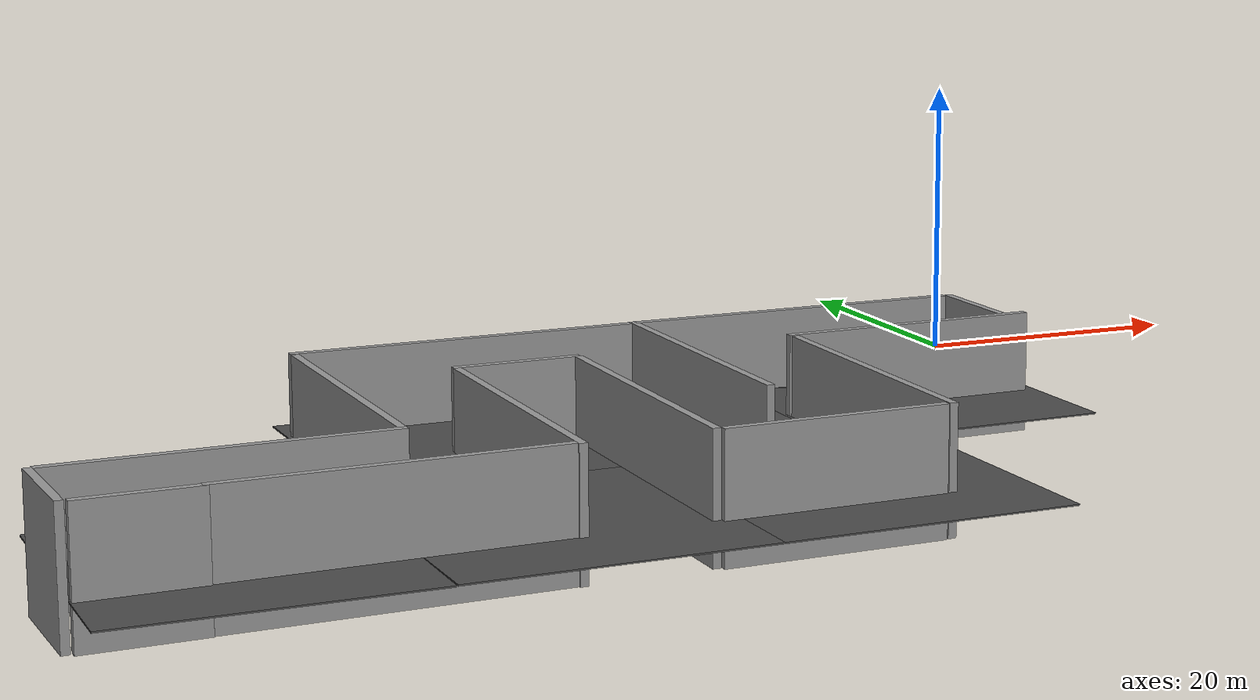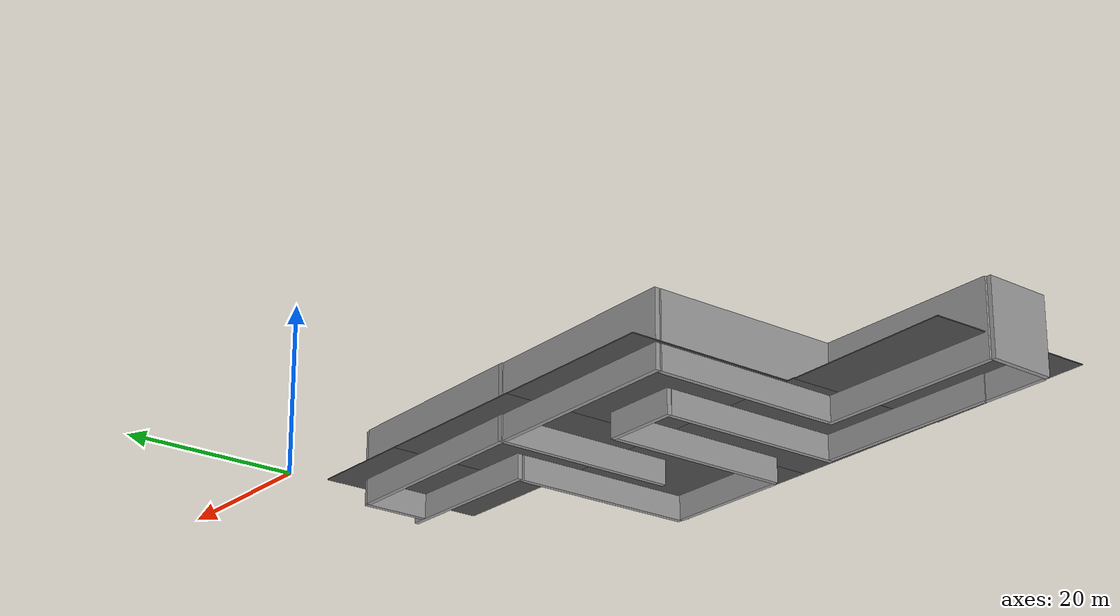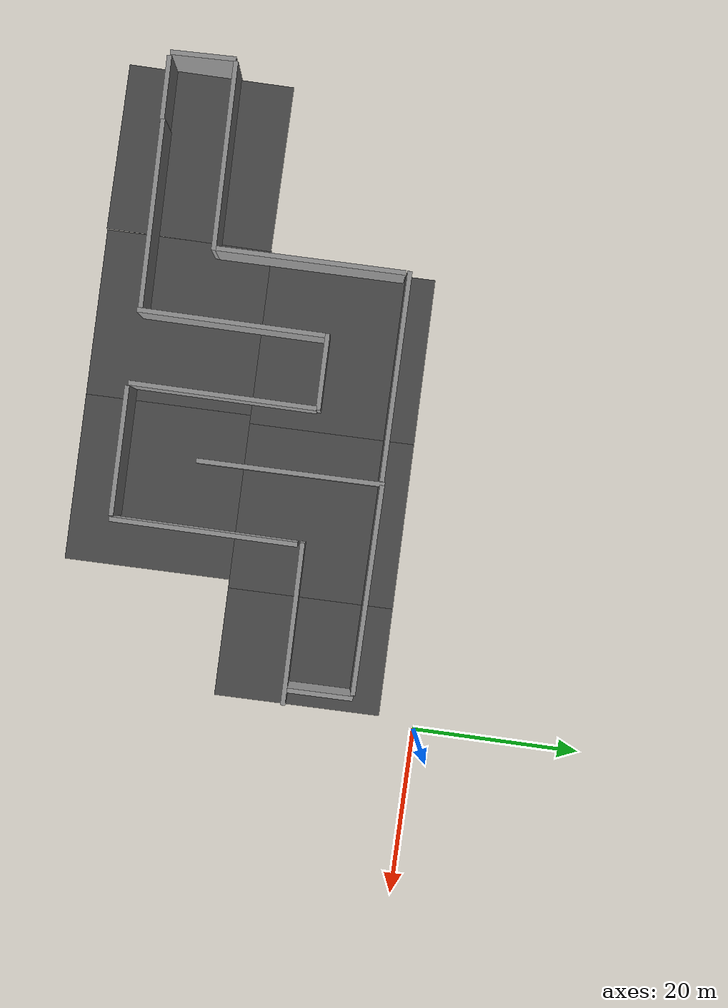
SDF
<?xml version='1.0'?>
<sdf version='1.6'>
  <model name='DQN_world_3'>
    <link name='link'>
      <pose frame=''>-16.1586 -7.95575 1.4 0 -0 0</pose>
      <inertial>
        <inertia>
          <ixx>nan</ixx>
          <ixy>0</ixy>
          <ixz>0</ixz>
          <iyy>nan</iyy>
          <iyz>0</iyz>
          <izz>nan</izz>
        </inertia>
        <mass>0</mass>
        <pose frame=''>0 0 0 0 -0 0</pose>
      </inertial>
      <self_collide>0</self_collide>
      <kinematic>0</kinematic>
      <visual name='visual'>
        <cast_shadows>0</cast_shadows>
        <geometry>
          <box>
            <size>24.6746 0.556506 8.63552</size>
          </box>
        </geometry>
        <material>
          <script>
            <uri>model://grey_wall/materials/scripts</uri>
            <uri>model://grey_wall/materials/textures</uri>
            <name>vrc/grey_wall</name>
          </script>
          <ambient>1 1 1 1</ambient>
          <diffuse>1 1 1 1</diffuse>
          <specular>0 0 0 1</specular>
          <emissive>0 0 0 1</emissive>
        </material>
        <pose frame=''>0 0 0 0 -0 0</pose>
        <transparency>0</transparency>
      </visual>
      <collision name='collision'>
        <laser_retro>0</laser_retro>
        <max_contacts>10</max_contacts>
        <pose frame=''>0 0 0 0 -0 0</pose>
        <geometry>
          <box>
            <size>24.6746 0.556506 8.63552</size>
          </box>
        </geometry>
        <surface>
          <friction>
            <ode>
              <mu>1</mu>
              <mu2>1</mu2>
              <fdir1>0 0 0</fdir1>
              <slip1>0</slip1>
              <slip2>0</slip2>
            </ode>
            <torsional>
              <coefficient>1</coefficient>
              <patch_radius>0</patch_radius>
              <surface_radius>0</surface_radius>
              <use_patch_radius>1</use_patch_radius>
              <ode>
                <slip>0</slip>
              </ode>
            </torsional>
          </friction>
          <bounce>
            <restitution_coefficient>0</restitution_coefficient>
            <threshold>1e+06</threshold>
          </bounce>
          <contact>
            <collide_without_contact>0</collide_without_contact>
            <collide_without_contact_bitmask>1</collide_without_contact_bitmask>
            <collide_bitmask>1</collide_bitmask>
            <ode>
              <soft_cfm>0</soft_cfm>
              <soft_erp>0.2</soft_erp>
              <kp>1e+13</kp>
              <kd>1</kd>
              <max_vel>0.01</max_vel>
              <min_depth>0</min_depth>
            </ode>
            <bullet>
              <split_impulse>1</split_impulse>
              <split_impulse_penetration_threshold>-0.01</split_impulse_penetration_threshold>
              <soft_cfm>0</soft_cfm>
              <soft_erp>0.2</soft_erp>
              <kp>1e+13</kp>
              <kd>1</kd>
            </bullet>
          </contact>
        </surface>
      </collision>
    </link>
    <link name='link_clone'>
      <pose frame=''>-3.3999 -11.7401 1.4 0 -0 1.58149</pose>
      <inertial>
        <inertia>
          <ixx>nan</ixx>
          <ixy>0</ixy>
          <ixz>0</ixz>
          <iyy>nan</iyy>
          <iyz>0</iyz>
          <izz>nan</izz>
        </inertia>
        <mass>0</mass>
        <pose frame=''>0 0 0 0 -0 0</pose>
      </inertial>
      <self_collide>0</self_collide>
      <kinematic>0</kinematic>
      <visual name='visual'>
        <cast_shadows>0</cast_shadows>
        <geometry>
          <box>
            <size>7.71438 0.556506 8.63552</size>
          </box>
        </geometry>
        <material>
          <script>
            <uri>model://grey_wall/materials/scripts</uri>
            <uri>model://grey_wall/materials/textures</uri>
            <name>vrc/grey_wall</name>
          </script>
          <ambient>1 1 1 1</ambient>
          <diffuse>1 1 1 1</diffuse>
          <specular>0 0 0 1</specular>
          <emissive>0 0 0 1</emissive>
          <shader type='pixel'/>
        </material>
        <pose frame=''>0 0 0 0 -0 0</pose>
        <transparency>0</transparency>
      </visual>
      <collision name='collision'>
        <laser_retro>0</laser_retro>
        <max_contacts>10</max_contacts>
        <pose frame=''>0 0 0 0 -0 0</pose>
        <geometry>
          <box>
            <size>7.71438 0.556506 8.63552</size>
          </box>
        </geometry>
        <surface>
          <friction>
            <ode>
              <mu>1</mu>
              <mu2>1</mu2>
              <fdir1>0 0 0</fdir1>
              <slip1>0</slip1>
              <slip2>0</slip2>
            </ode>
            <torsional>
              <coefficient>1</coefficient>
              <patch_radius>0</patch_radius>
              <surface_radius>0</surface_radius>
              <use_patch_radius>1</use_patch_radius>
              <ode>
                <slip>0</slip>
              </ode>
            </torsional>
          </friction>
          <bounce>
            <restitution_coefficient>0</restitution_coefficient>
            <threshold>1e+06</threshold>
          </bounce>
          <contact>
            <collide_without_contact>0</collide_without_contact>
            <collide_without_contact_bitmask>1</collide_without_contact_bitmask>
            <collide_bitmask>1</collide_bitmask>
            <ode>
              <soft_cfm>0</soft_cfm>
              <soft_erp>0.2</soft_erp>
              <kp>1e+13</kp>
              <kd>1</kd>
              <max_vel>0.01</max_vel>
              <min_depth>0</min_depth>
            </ode>
            <bullet>
              <split_impulse>1</split_impulse>
              <split_impulse_penetration_threshold>-0.01</split_impulse_penetration_threshold>
              <soft_cfm>0</soft_cfm>
              <soft_erp>0.2</soft_erp>
              <kp>1e+13</kp>
              <kd>1</kd>
            </bullet>
          </contact>
        </surface>
      </collision>
    </link>
    <link name='link_clone_0'>
      <pose frame=''>-28.4744 -18.7157 1.4 0 -0 1.58149</pose>
      <inertial>
        <inertia>
          <ixx>nan</ixx>
          <ixy>0</ixy>
          <ixz>0</ixz>
          <iyy>nan</iyy>
          <iyz>0</iyz>
          <izz>nan</izz>
        </inertia>
        <mass>0</mass>
        <pose frame=''>0 0 0 0 -0 0</pose>
      </inertial>
      <self_collide>0</self_collide>
      <kinematic>0</kinematic>
      <visual name='visual'>
        <cast_shadows>0</cast_shadows>
        <geometry>
          <box>
            <size>22.0968 0.556506 8.63552</size>
          </box>
        </geometry>
        <material>
          <script>
            <uri>model://grey_wall/materials/scripts</uri>
            <uri>model://grey_wall/materials/textures</uri>
            <name>vrc/grey_wall</name>
          </script>
          <ambient>1 1 1 1</ambient>
          <diffuse>1 1 1 1</diffuse>
          <specular>0 0 0 1</specular>
          <emissive>0 0 0 1</emissive>
          <shader type='pixel'/>
        </material>
        <pose frame=''>0 0 0 0 -0 0</pose>
        <transparency>0</transparency>
      </visual>
      <collision name='collision'>
        <laser_retro>0</laser_retro>
        <max_contacts>10</max_contacts>
        <pose frame=''>0 0 0 0 -0 0</pose>
        <geometry>
          <box>
            <size>22.0968 0.556506 8.63552</size>
          </box>
        </geometry>
        <surface>
          <friction>
            <ode>
              <mu>1</mu>
              <mu2>1</mu2>
              <fdir1>0 0 0</fdir1>
              <slip1>0</slip1>
              <slip2>0</slip2>
            </ode>
            <torsional>
              <coefficient>1</coefficient>
              <patch_radius>0</patch_radius>
              <surface_radius>0</surface_radius>
              <use_patch_radius>1</use_patch_radius>
              <ode>
                <slip>0</slip>
              </ode>
            </torsional>
          </friction>
          <bounce>
            <restitution_coefficient>0</restitution_coefficient>
            <threshold>1e+06</threshold>
          </bounce>
          <contact>
            <collide_without_contact>0</collide_without_contact>
            <collide_without_contact_bitmask>1</collide_without_contact_bitmask>
            <collide_bitmask>1</collide_bitmask>
            <ode>
              <soft_cfm>0</soft_cfm>
              <soft_erp>0.2</soft_erp>
              <kp>1e+13</kp>
              <kd>1</kd>
              <max_vel>0.01</max_vel>
              <min_depth>0</min_depth>
            </ode>
            <bullet>
              <split_impulse>1</split_impulse>
              <split_impulse_penetration_threshold>-0.01</split_impulse_penetration_threshold>
              <soft_cfm>0</soft_cfm>
              <soft_erp>0.2</soft_erp>
              <kp>1e+13</kp>
              <kd>1</kd>
            </bullet>
          </contact>
        </surface>
      </collision>
    </link>
    <link name='link_clone_0_clone'>
      <pose frame=''>-44.7994 -28.0115 1.4 0 -0 1.57361</pose>
      <inertial>
        <inertia>
          <ixx>nan</ixx>
          <ixy>0</ixy>
          <ixz>0</ixz>
          <iyy>nan</iyy>
          <iyz>0</iyz>
          <izz>nan</izz>
        </inertia>
        <mass>0</mass>
        <pose frame=''>0 0 0 0 -0 0</pose>
      </inertial>
      <self_collide>0</self_collide>
      <kinematic>0</kinematic>
      <visual name='visual'>
        <cast_shadows>0</cast_shadows>
        <geometry>
          <box>
            <size>22.0968 0.556506 8.63552</size>
          </box>
        </geometry>
        <material>
          <script>
            <uri>model://grey_wall/materials/scripts</uri>
            <uri>model://grey_wall/materials/textures</uri>
            <name>vrc/grey_wall</name>
          </script>
          <ambient>1 1 1 1</ambient>
          <diffuse>1 1 1 1</diffuse>
          <specular>0 0 0 1</specular>
          <emissive>0 0 0 1</emissive>
          <shader type='pixel'/>
        </material>
        <pose frame=''>0 0 0 0 -0 0</pose>
        <transparency>0</transparency>
      </visual>
      <collision name='collision'>
        <laser_retro>0</laser_retro>
        <max_contacts>10</max_contacts>
        <pose frame=''>0 0 0 0 -0 0</pose>
        <geometry>
          <box>
            <size>22.0968 0.556506 8.63552</size>
          </box>
        </geometry>
        <surface>
          <friction>
            <ode>
              <mu>1</mu>
              <mu2>1</mu2>
              <fdir1>0 0 0</fdir1>
              <slip1>0</slip1>
              <slip2>0</slip2>
            </ode>
            <torsional>
              <coefficient>1</coefficient>
              <patch_radius>0</patch_radius>
              <surface_radius>0</surface_radius>
              <use_patch_radius>1</use_patch_radius>
              <ode>
                <slip>0</slip>
              </ode>
            </torsional>
          </friction>
          <bounce>
            <restitution_coefficient>0</restitution_coefficient>
            <threshold>1e+06</threshold>
          </bounce>
          <contact>
            <collide_without_contact>0</collide_without_contact>
            <collide_without_contact_bitmask>1</collide_without_contact_bitmask>
            <collide_bitmask>1</collide_bitmask>
            <ode>
              <soft_cfm>0</soft_cfm>
              <soft_erp>0.2</soft_erp>
              <kp>1e+13</kp>
              <kd>1</kd>
              <max_vel>0.01</max_vel>
              <min_depth>0</min_depth>
            </ode>
            <bullet>
              <split_impulse>1</split_impulse>
              <split_impulse_penetration_threshold>-0.01</split_impulse_penetration_threshold>
              <soft_cfm>0</soft_cfm>
              <soft_erp>0.2</soft_erp>
              <kp>1e+13</kp>
              <kd>1</kd>
            </bullet>
          </contact>
        </surface>
      </collision>
    </link>
    <link name='link_clone_0_clone_0'>
      <pose frame=''>-56.0937 -38.8963 1.4 0 0 -3.1202</pose>
      <inertial>
        <inertia>
          <ixx>nan</ixx>
          <ixy>0</ixy>
          <ixz>0</ixz>
          <iyy>nan</iyy>
          <iyz>0</iyz>
          <izz>nan</izz>
        </inertia>
        <mass>0</mass>
        <pose frame=''>0 0 0 0 -0 0</pose>
      </inertial>
      <self_collide>0</self_collide>
      <kinematic>0</kinematic>
      <visual name='visual'>
        <cast_shadows>0</cast_shadows>
        <geometry>
          <box>
            <size>22.0968 0.556506 8.63552</size>
          </box>
        </geometry>
        <material>
          <script>
            <uri>model://grey_wall/materials/scripts</uri>
            <uri>model://grey_wall/materials/textures</uri>
            <name>vrc/grey_wall</name>
          </script>
          <ambient>1 1 1 1</ambient>
          <diffuse>1 1 1 1</diffuse>
          <specular>0 0 0 1</specular>
          <emissive>0 0 0 1</emissive>
          <shader type='pixel'/>
        </material>
        <pose frame=''>0 0 0 0 -0 0</pose>
        <transparency>0</transparency>
      </visual>
      <collision name='collision'>
        <laser_retro>0</laser_retro>
        <max_contacts>10</max_contacts>
        <pose frame=''>0 0 0 0 -0 0</pose>
        <geometry>
          <box>
            <size>22.0968 0.556506 8.63552</size>
          </box>
        </geometry>
        <surface>
          <friction>
            <ode>
              <mu>1</mu>
              <mu2>1</mu2>
              <fdir1>0 0 0</fdir1>
              <slip1>0</slip1>
              <slip2>0</slip2>
            </ode>
            <torsional>
              <coefficient>1</coefficient>
              <patch_radius>0</patch_radius>
              <surface_radius>0</surface_radius>
              <use_patch_radius>1</use_patch_radius>
              <ode>
                <slip>0</slip>
              </ode>
            </torsional>
          </friction>
          <bounce>
            <restitution_coefficient>0</restitution_coefficient>
            <threshold>1e+06</threshold>
          </bounce>
          <contact>
            <collide_without_contact>0</collide_without_contact>
            <collide_without_contact_bitmask>1</collide_without_contact_bitmask>
            <collide_bitmask>1</collide_bitmask>
            <ode>
              <soft_cfm>0</soft_cfm>
              <soft_erp>0.2</soft_erp>
              <kp>1e+13</kp>
              <kd>1</kd>
              <max_vel>0.01</max_vel>
              <min_depth>0</min_depth>
            </ode>
            <bullet>
              <split_impulse>1</split_impulse>
              <split_impulse_penetration_threshold>-0.01</split_impulse_penetration_threshold>
              <soft_cfm>0</soft_cfm>
              <soft_erp>0.2</soft_erp>
              <kp>1e+13</kp>
              <kd>1</kd>
            </bullet>
          </contact>
        </surface>
      </collision>
    </link>
    <link name='link_clone_0_clone_1'>
      <pose frame=''>-63.9022 -31.4223 1.4 0 0 -3.1202</pose>
      <inertial>
        <inertia>
          <ixx>nan</ixx>
          <ixy>0</ixy>
          <ixz>0</ixz>
          <iyy>nan</iyy>
          <iyz>0</iyz>
          <izz>nan</izz>
        </inertia>
        <mass>0</mass>
        <pose frame=''>0 0 0 0 -0 0</pose>
      </inertial>
      <self_collide>0</self_collide>
      <kinematic>0</kinematic>
      <visual name='visual'>
        <cast_shadows>0</cast_shadows>
        <geometry>
          <box>
            <size>22.0968 0.556506 8.63552</size>
          </box>
        </geometry>
        <material>
          <script>
            <uri>model://grey_wall/materials/scripts</uri>
            <uri>model://grey_wall/materials/textures</uri>
            <name>vrc/grey_wall</name>
          </script>
          <ambient>1 1 1 1</ambient>
          <diffuse>1 1 1 1</diffuse>
          <specular>0 0 0 1</specular>
          <emissive>0 0 0 1</emissive>
          <shader type='pixel'/>
        </material>
        <pose frame=''>0 0 0 0 -0 0</pose>
        <transparency>0</transparency>
      </visual>
      <collision name='collision'>
        <laser_retro>0</laser_retro>
        <max_contacts>10</max_contacts>
        <pose frame=''>0 0 0 0 -0 0</pose>
        <geometry>
          <box>
            <size>22.0968 0.556506 8.63552</size>
          </box>
        </geometry>
        <surface>
          <friction>
            <ode>
              <mu>1</mu>
              <mu2>1</mu2>
              <fdir1>0 0 0</fdir1>
              <slip1>0</slip1>
              <slip2>0</slip2>
            </ode>
            <torsional>
              <coefficient>1</coefficient>
              <patch_radius>0</patch_radius>
              <surface_radius>0</surface_radius>
              <use_patch_radius>1</use_patch_radius>
              <ode>
                <slip>0</slip>
              </ode>
            </torsional>
          </friction>
          <bounce>
            <restitution_coefficient>0</restitution_coefficient>
            <threshold>1e+06</threshold>
          </bounce>
          <contact>
            <collide_without_contact>0</collide_without_contact>
            <collide_without_contact_bitmask>1</collide_without_contact_bitmask>
            <collide_bitmask>1</collide_bitmask>
            <ode>
              <soft_cfm>0</soft_cfm>
              <soft_erp>0.2</soft_erp>
              <kp>1e+13</kp>
              <kd>1</kd>
              <max_vel>0.01</max_vel>
              <min_depth>0</min_depth>
            </ode>
            <bullet>
              <split_impulse>1</split_impulse>
              <split_impulse_penetration_threshold>-0.01</split_impulse_penetration_threshold>
              <soft_cfm>0</soft_cfm>
              <soft_erp>0.2</soft_erp>
              <kp>1e+13</kp>
              <kd>1</kd>
            </bullet>
          </contact>
        </surface>
      </collision>
    </link>
    <link name='link_clone_0_clone_clone'>
      <pose frame=''>-36.2495 -27.8062 1.4 0 -0 1.57361</pose>
      <inertial>
        <inertia>
          <ixx>nan</ixx>
          <ixy>0</ixy>
          <ixz>0</ixz>
          <iyy>nan</iyy>
          <iyz>0</iyz>
          <izz>nan</izz>
        </inertia>
        <mass>0</mass>
        <pose frame=''>0 0 0 0 -0 0</pose>
      </inertial>
      <self_collide>0</self_collide>
      <kinematic>0</kinematic>
      <visual name='visual'>
        <cast_shadows>0</cast_shadows>
        <geometry>
          <box>
            <size>22.0968 0.556506 8.63552</size>
          </box>
        </geometry>
        <material>
          <script>
            <uri>model://grey_wall/materials/scripts</uri>
            <uri>model://grey_wall/materials/textures</uri>
            <name>vrc/grey_wall</name>
          </script>
          <ambient>1 1 1 1</ambient>
          <diffuse>1 1 1 1</diffuse>
          <specular>0 0 0 1</specular>
          <emissive>0 0 0 1</emissive>
          <shader type='pixel'/>
        </material>
        <pose frame=''>0 0 0 0 -0 0</pose>
        <transparency>0</transparency>
      </visual>
      <collision name='collision'>
        <laser_retro>0</laser_retro>
        <max_contacts>10</max_contacts>
        <pose frame=''>0 0 0 0 -0 0</pose>
        <geometry>
          <box>
            <size>22.0968 0.556506 8.63552</size>
          </box>
        </geometry>
        <surface>
          <friction>
            <ode>
              <mu>1</mu>
              <mu2>1</mu2>
              <fdir1>0 0 0</fdir1>
              <slip1>0</slip1>
              <slip2>0</slip2>
            </ode>
            <torsional>
              <coefficient>1</coefficient>
              <patch_radius>0</patch_radius>
              <surface_radius>0</surface_radius>
              <use_patch_radius>1</use_patch_radius>
              <ode>
                <slip>0</slip>
              </ode>
            </torsional>
          </friction>
          <bounce>
            <restitution_coefficient>0</restitution_coefficient>
            <threshold>1e+06</threshold>
          </bounce>
          <contact>
            <collide_without_contact>0</collide_without_contact>
            <collide_without_contact_bitmask>1</collide_without_contact_bitmask>
            <collide_bitmask>1</collide_bitmask>
            <ode>
              <soft_cfm>0</soft_cfm>
              <soft_erp>0.2</soft_erp>
              <kp>1e+13</kp>
              <kd>1</kd>
              <max_vel>0.01</max_vel>
              <min_depth>0</min_depth>
            </ode>
            <bullet>
              <split_impulse>1</split_impulse>
              <split_impulse_penetration_threshold>-0.01</split_impulse_penetration_threshold>
              <soft_cfm>0</soft_cfm>
              <soft_erp>0.2</soft_erp>
              <kp>1e+13</kp>
              <kd>1</kd>
            </bullet>
          </contact>
        </surface>
      </collision>
    </link>
    <link name='link_clone_0_clone_clone_0'>
      <pose frame=''>-20.2495 -27.8062 1.4 0 -0 1.57361</pose>
      <inertial>
        <inertia>
          <ixx>nan</ixx>
          <ixy>0</ixy>
          <ixz>0</ixz>
          <iyy>nan</iyy>
          <iyz>0</iyz>
          <izz>nan</izz>
        </inertia>
        <mass>0</mass>
        <pose frame=''>0 0 0 0 -0 0</pose>
      </inertial>
      <self_collide>0</self_collide>
      <kinematic>0</kinematic>
      <visual name='visual'>
        <cast_shadows>0</cast_shadows>
        <geometry>
          <box>
            <size>22.0968 0.556506 8.63552</size>
          </box>
        </geometry>
        <material>
          <script>
            <uri>model://grey_wall/materials/scripts</uri>
            <uri>model://grey_wall/materials/textures</uri>
            <name>vrc/grey_wall</name>
          </script>
          <ambient>1 1 1 1</ambient>
          <diffuse>1 1 1 1</diffuse>
          <specular>0 0 0 1</specular>
          <emissive>0 0 0 1</emissive>
          <shader type='pixel'/>
        </material>
        <pose frame=''>0 0 0 0 -0 0</pose>
        <transparency>0</transparency>
      </visual>
      <collision name='collision'>
        <laser_retro>0</laser_retro>
        <max_contacts>10</max_contacts>
        <pose frame=''>0 0 0 0 -0 0</pose>
        <geometry>
          <box>
            <size>22.0968 0.556506 8.63552</size>
          </box>
        </geometry>
        <surface>
          <friction>
            <ode>
              <mu>1</mu>
              <mu2>1</mu2>
              <fdir1>0 0 0</fdir1>
              <slip1>0</slip1>
              <slip2>0</slip2>
            </ode>
            <torsional>
              <coefficient>1</coefficient>
              <patch_radius>0</patch_radius>
              <surface_radius>0</surface_radius>
              <use_patch_radius>1</use_patch_radius>
              <ode>
                <slip>0</slip>
              </ode>
            </torsional>
          </friction>
          <bounce>
            <restitution_coefficient>0</restitution_coefficient>
            <threshold>1e+06</threshold>
          </bounce>
          <contact>
            <collide_without_contact>0</collide_without_contact>
            <collide_without_contact_bitmask>1</collide_without_contact_bitmask>
            <collide_bitmask>1</collide_bitmask>
            <ode>
              <soft_cfm>0</soft_cfm>
              <soft_erp>0.2</soft_erp>
              <kp>1e+13</kp>
              <kd>1</kd>
              <max_vel>0.01</max_vel>
              <min_depth>0</min_depth>
            </ode>
            <bullet>
              <split_impulse>1</split_impulse>
              <split_impulse_penetration_threshold>-0.01</split_impulse_penetration_threshold>
              <soft_cfm>0</soft_cfm>
              <soft_erp>0.2</soft_erp>
              <kp>1e+13</kp>
              <kd>1</kd>
            </bullet>
          </contact>
        </surface>
      </collision>
    </link>
    <link name='link_clone_2_clone_0'>
      <pose frame=''>-53.2184 -19.83 1.4 0 -0 1.58085</pose>
      <inertial>
        <inertia>
          <ixx>nan</ixx>
          <ixy>0</ixy>
          <ixz>0</ixz>
          <iyy>nan</iyy>
          <iyz>0</iyz>
          <izz>nan</izz>
        </inertia>
        <mass>0</mass>
        <pose frame=''>0 0 0 0 -0 0</pose>
      </inertial>
      <self_collide>0</self_collide>
      <kinematic>0</kinematic>
      <visual name='visual'>
        <cast_shadows>0</cast_shadows>
        <geometry>
          <box>
            <size>22.2987 0.556506 8.63552</size>
          </box>
        </geometry>
        <material>
          <script>
            <uri>model://grey_wall/materials/scripts</uri>
            <uri>model://grey_wall/materials/textures</uri>
            <name>vrc/grey_wall</name>
          </script>
          <ambient>1 1 1 1</ambient>
          <diffuse>1 1 1 1</diffuse>
          <specular>0 0 0 1</specular>
          <emissive>0 0 0 1</emissive>
          <shader type='pixel'/>
        </material>
        <pose frame=''>0 0 0 0 -0 0</pose>
        <transparency>0</transparency>
      </visual>
      <collision name='collision'>
        <laser_retro>0</laser_retro>
        <max_contacts>10</max_contacts>
        <pose frame=''>0 0 0 0 -0 0</pose>
        <geometry>
          <box>
            <size>22.2987 0.556506 8.63552</size>
          </box>
        </geometry>
        <surface>
          <friction>
            <ode>
              <mu>1</mu>
              <mu2>1</mu2>
              <fdir1>0 0 0</fdir1>
              <slip1>0</slip1>
              <slip2>0</slip2>
            </ode>
            <torsional>
              <coefficient>1</coefficient>
              <patch_radius>0</patch_radius>
              <surface_radius>0</surface_radius>
              <use_patch_radius>1</use_patch_radius>
              <ode>
                <slip>0</slip>
              </ode>
            </torsional>
          </friction>
          <bounce>
            <restitution_coefficient>0</restitution_coefficient>
            <threshold>1e+06</threshold>
          </bounce>
          <contact>
            <collide_without_contact>0</collide_without_contact>
            <collide_without_contact_bitmask>1</collide_without_contact_bitmask>
            <collide_bitmask>1</collide_bitmask>
            <ode>
              <soft_cfm>0</soft_cfm>
              <soft_erp>0.2</soft_erp>
              <kp>1e+13</kp>
              <kd>1</kd>
              <max_vel>0.01</max_vel>
              <min_depth>0</min_depth>
            </ode>
            <bullet>
              <split_impulse>1</split_impulse>
              <split_impulse_penetration_threshold>-0.01</split_impulse_penetration_threshold>
              <soft_cfm>0</soft_cfm>
              <soft_erp>0.2</soft_erp>
              <kp>1e+13</kp>
              <kd>1</kd>
            </bullet>
          </contact>
        </surface>
      </collision>
    </link>
    <link name='link_clone_2_clone_0_clone'>
      <pose frame=''>-40.6053 -16.6295 1.4 0 -0 0.014459</pose>
      <inertial>
        <inertia>
          <ixx>nan</ixx>
          <ixy>0</ixy>
          <ixz>0</ixz>
          <iyy>nan</iyy>
          <iyz>0</iyz>
          <izz>nan</izz>
        </inertia>
        <mass>0</mass>
        <pose frame=''>0 0 0 0 -0 0</pose>
      </inertial>
      <self_collide>0</self_collide>
      <kinematic>0</kinematic>
      <visual name='visual'>
        <cast_shadows>0</cast_shadows>
        <geometry>
          <box>
            <size>8.91114 0.556506 8.63552</size>
          </box>
        </geometry>
        <material>
          <script>
            <uri>model://grey_wall/materials/scripts</uri>
            <uri>model://grey_wall/materials/textures</uri>
            <name>vrc/grey_wall</name>
          </script>
          <ambient>1 1 1 1</ambient>
          <diffuse>1 1 1 1</diffuse>
          <specular>0 0 0 1</specular>
          <emissive>0 0 0 1</emissive>
          <shader type='pixel'/>
        </material>
        <pose frame=''>0 0 0 0 -0 0</pose>
        <transparency>0</transparency>
      </visual>
      <collision name='collision'>
        <laser_retro>0</laser_retro>
        <max_contacts>10</max_contacts>
        <pose frame=''>0 0 0 0 -0 0</pose>
        <geometry>
          <box>
            <size>8.91114 0.556506 8.63552</size>
          </box>
        </geometry>
        <surface>
          <friction>
            <ode>
              <mu>1</mu>
              <mu2>1</mu2>
              <fdir1>0 0 0</fdir1>
              <slip1>0</slip1>
              <slip2>0</slip2>
            </ode>
            <torsional>
              <coefficient>1</coefficient>
              <patch_radius>0</patch_radius>
              <surface_radius>0</surface_radius>
              <use_patch_radius>1</use_patch_radius>
              <ode>
                <slip>0</slip>
              </ode>
            </torsional>
          </friction>
          <bounce>
            <restitution_coefficient>0</restitution_coefficient>
            <threshold>1e+06</threshold>
          </bounce>
          <contact>
            <collide_without_contact>0</collide_without_contact>
            <collide_without_contact_bitmask>1</collide_without_contact_bitmask>
            <collide_bitmask>1</collide_bitmask>
            <ode>
              <soft_cfm>0</soft_cfm>
              <soft_erp>0.2</soft_erp>
              <kp>1e+13</kp>
              <kd>1</kd>
              <max_vel>0.01</max_vel>
              <min_depth>0</min_depth>
            </ode>
            <bullet>
              <split_impulse>1</split_impulse>
              <split_impulse_penetration_threshold>-0.01</split_impulse_penetration_threshold>
              <soft_cfm>0</soft_cfm>
              <soft_erp>0.2</soft_erp>
              <kp>1e+13</kp>
              <kd>1</kd>
            </bullet>
          </contact>
        </surface>
      </collision>
    </link>
    <link name='link_clone_2_clone_1'>
      <pose frame=''>-11.0728 -16.0271 1.4 0 0 -3.12375</pose>
      <inertial>
        <inertia>
          <ixx>nan</ixx>
          <ixy>0</ixy>
          <ixz>0</ixz>
          <iyy>nan</iyy>
          <iyz>0</iyz>
          <izz>nan</izz>
        </inertia>
        <mass>0</mass>
        <pose frame=''>0 0 0 0 -0 0</pose>
      </inertial>
      <self_collide>0</self_collide>
      <kinematic>0</kinematic>
      <visual name='visual'>
        <cast_shadows>0</cast_shadows>
        <geometry>
          <box>
            <size>19.0054 0.556506 8.63552</size>
          </box>
        </geometry>
        <material>
          <script>
            <uri>model://grey_wall/materials/scripts</uri>
            <uri>model://grey_wall/materials/textures</uri>
            <name>vrc/grey_wall</name>
          </script>
          <ambient>1 1 1 1</ambient>
          <diffuse>1 1 1 1</diffuse>
          <specular>0 0 0 1</specular>
          <emissive>0 0 0 1</emissive>
          <shader type='pixel'/>
        </material>
        <pose frame=''>0 0 0 0 -0 0</pose>
        <transparency>0</transparency>
      </visual>
      <collision name='collision'>
        <laser_retro>0</laser_retro>
        <max_contacts>10</max_contacts>
        <pose frame=''>0 0 0 0 -0 0</pose>
        <geometry>
          <box>
            <size>19.0054 0.556506 8.63552</size>
          </box>
        </geometry>
        <surface>
          <friction>
            <ode>
              <mu>1</mu>
              <mu2>1</mu2>
              <fdir1>0 0 0</fdir1>
              <slip1>0</slip1>
              <slip2>0</slip2>
            </ode>
            <torsional>
              <coefficient>1</coefficient>
              <patch_radius>0</patch_radius>
              <surface_radius>0</surface_radius>
              <use_patch_radius>1</use_patch_radius>
              <ode>
                <slip>0</slip>
              </ode>
            </torsional>
          </friction>
          <bounce>
            <restitution_coefficient>0</restitution_coefficient>
            <threshold>1e+06</threshold>
          </bounce>
          <contact>
            <collide_without_contact>0</collide_without_contact>
            <collide_without_contact_bitmask>1</collide_without_contact_bitmask>
            <collide_bitmask>1</collide_bitmask>
            <ode>
              <soft_cfm>0</soft_cfm>
              <soft_erp>0.2</soft_erp>
              <kp>1e+13</kp>
              <kd>1</kd>
              <max_vel>0.01</max_vel>
              <min_depth>0</min_depth>
            </ode>
            <bullet>
              <split_impulse>1</split_impulse>
              <split_impulse_penetration_threshold>-0.01</split_impulse_penetration_threshold>
              <soft_cfm>0</soft_cfm>
              <soft_erp>0.2</soft_erp>
              <kp>1e+13</kp>
              <kd>1</kd>
            </bullet>
          </contact>
        </surface>
      </collision>
    </link>
    <link name='link_clone_3_clone'>
      <pose frame=''>-28.2495 -38.8062 1.4 0 -0 0.01443</pose>
      <inertial>
        <inertia>
          <ixx>nan</ixx>
          <ixy>0</ixy>
          <ixz>0</ixz>
          <iyy>nan</iyy>
          <iyz>0</iyz>
          <izz>nan</izz>
        </inertia>
        <mass>0</mass>
        <pose frame=''>0 0 0 0 -0 0</pose>
      </inertial>
      <self_collide>0</self_collide>
      <kinematic>0</kinematic>
      <visual name='visual'>
        <cast_shadows>0</cast_shadows>
        <geometry>
          <box>
            <size>15.2375 0.556506 8.63552</size>
          </box>
        </geometry>
        <material>
          <script>
            <uri>model://grey_wall/materials/scripts</uri>
            <uri>model://grey_wall/materials/textures</uri>
            <name>vrc/grey_wall</name>
          </script>
          <ambient>1 1 1 1</ambient>
          <diffuse>1 1 1 1</diffuse>
          <specular>0 0 0 1</specular>
          <emissive>0 0 0 1</emissive>
          <shader type='pixel'/>
        </material>
        <pose frame=''>0 0 0 0 -0 0</pose>
        <transparency>0</transparency>
      </visual>
      <collision name='collision'>
        <laser_retro>0</laser_retro>
        <max_contacts>10</max_contacts>
        <pose frame=''>0 0 0 0 -0 0</pose>
        <geometry>
          <box>
            <size>15.2375 0.556506 8.63552</size>
          </box>
        </geometry>
        <surface>
          <friction>
            <ode>
              <mu>1</mu>
              <mu2>1</mu2>
              <fdir1>0 0 0</fdir1>
              <slip1>0</slip1>
              <slip2>0</slip2>
            </ode>
            <torsional>
              <coefficient>1</coefficient>
              <patch_radius>0</patch_radius>
              <surface_radius>0</surface_radius>
              <use_patch_radius>1</use_patch_radius>
              <ode>
                <slip>0</slip>
              </ode>
            </torsional>
          </friction>
          <bounce>
            <restitution_coefficient>0</restitution_coefficient>
            <threshold>1e+06</threshold>
          </bounce>
          <contact>
            <collide_without_contact>0</collide_without_contact>
            <collide_without_contact_bitmask>1</collide_without_contact_bitmask>
            <collide_bitmask>1</collide_bitmask>
            <ode>
              <soft_cfm>0</soft_cfm>
              <soft_erp>0.2</soft_erp>
              <kp>1e+13</kp>
              <kd>1</kd>
              <max_vel>0.01</max_vel>
              <min_depth>0</min_depth>
            </ode>
            <bullet>
              <split_impulse>1</split_impulse>
              <split_impulse_penetration_threshold>-0.01</split_impulse_penetration_threshold>
              <soft_cfm>0</soft_cfm>
              <soft_erp>0.2</soft_erp>
              <kp>1e+13</kp>
              <kd>1</kd>
            </bullet>
          </contact>
        </surface>
      </collision>
    </link>
    <link name='link_clone_4'>
      <pose frame=''>-41.255 -8.14242 1.4 0 -0 0.006571</pose>
      <inertial>
        <inertia>
          <ixx>nan</ixx>
          <ixy>0</ixy>
          <ixz>0</ixz>
          <iyy>nan</iyy>
          <iyz>0</iyz>
          <izz>nan</izz>
        </inertia>
        <mass>0</mass>
        <pose frame=''>0 0 0 0 -0 0</pose>
      </inertial>
      <self_collide>0</self_collide>
      <kinematic>0</kinematic>
      <visual name='visual'>
        <cast_shadows>0</cast_shadows>
        <geometry>
          <box>
            <size>24.6746 0.556506 8.63552</size>
          </box>
        </geometry>
        <material>
          <script>
            <uri>model://grey_wall/materials/scripts</uri>
            <uri>model://grey_wall/materials/textures</uri>
            <name>vrc/grey_wall</name>
          </script>
          <ambient>1 1 1 1</ambient>
          <diffuse>1 1 1 1</diffuse>
          <specular>0 0 0 1</specular>
          <emissive>0 0 0 1</emissive>
          <shader type='pixel'/>
        </material>
        <pose frame=''>0 0 0 0 -0 0</pose>
        <transparency>0</transparency>
      </visual>
      <collision name='collision'>
        <laser_retro>0</laser_retro>
        <max_contacts>10</max_contacts>
        <pose frame=''>0 0 0 0 -0 0</pose>
        <geometry>
          <box>
            <size>24.6746 0.556506 8.63552</size>
          </box>
        </geometry>
        <surface>
          <friction>
            <ode>
              <mu>1</mu>
              <mu2>1</mu2>
              <fdir1>0 0 0</fdir1>
              <slip1>0</slip1>
              <slip2>0</slip2>
            </ode>
            <torsional>
              <coefficient>1</coefficient>
              <patch_radius>0</patch_radius>
              <surface_radius>0</surface_radius>
              <use_patch_radius>1</use_patch_radius>
              <ode>
                <slip>0</slip>
              </ode>
            </torsional>
          </friction>
          <bounce>
            <restitution_coefficient>0</restitution_coefficient>
            <threshold>1e+06</threshold>
          </bounce>
          <contact>
            <collide_without_contact>0</collide_without_contact>
            <collide_without_contact_bitmask>1</collide_without_contact_bitmask>
            <collide_bitmask>1</collide_bitmask>
            <ode>
              <soft_cfm>0</soft_cfm>
              <soft_erp>0.2</soft_erp>
              <kp>1e+13</kp>
              <kd>1</kd>
              <max_vel>0.01</max_vel>
              <min_depth>0</min_depth>
            </ode>
            <bullet>
              <split_impulse>1</split_impulse>
              <split_impulse_penetration_threshold>-0.01</split_impulse_penetration_threshold>
              <soft_cfm>0</soft_cfm>
              <soft_erp>0.2</soft_erp>
              <kp>1e+13</kp>
              <kd>1</kd>
            </bullet>
          </contact>
        </surface>
      </collision>
    </link>
    <link name='link_clone_clone'>
      <pose frame=''>-70.6831 -39.3146 1.4 0 0 -3.1202</pose>
      <inertial>
        <inertia>
          <ixx>nan</ixx>
          <ixy>0</ixy>
          <ixz>0</ixz>
          <iyy>nan</iyy>
          <iyz>0</iyz>
          <izz>nan</izz>
        </inertia>
        <mass>0</mass>
        <pose frame=''>0 0 0 0 -0 0</pose>
      </inertial>
      <self_collide>0</self_collide>
      <kinematic>0</kinematic>
      <visual name='visual'>
        <cast_shadows>0</cast_shadows>
        <geometry>
          <box>
            <size>7.71438 0.556506 8.63552</size>
          </box>
        </geometry>
        <material>
          <script>
            <uri>model://grey_wall/materials/scripts</uri>
            <uri>model://grey_wall/materials/textures</uri>
            <name>vrc/grey_wall</name>
          </script>
          <ambient>1 1 1 1</ambient>
          <diffuse>1 1 1 1</diffuse>
          <specular>0 0 0 1</specular>
          <emissive>0 0 0 1</emissive>
          <shader type='pixel'/>
        </material>
        <pose frame=''>0 0 0 0 -0 0</pose>
        <transparency>0</transparency>
      </visual>
      <collision name='collision'>
        <laser_retro>0</laser_retro>
        <max_contacts>10</max_contacts>
        <pose frame=''>0 0 0 0 -0 0</pose>
        <geometry>
          <box>
            <size>7.71438 0.556506 8.63552</size>
          </box>
        </geometry>
        <surface>
          <friction>
            <ode>
              <mu>1</mu>
              <mu2>1</mu2>
              <fdir1>0 0 0</fdir1>
              <slip1>0</slip1>
              <slip2>0</slip2>
            </ode>
            <torsional>
              <coefficient>1</coefficient>
              <patch_radius>0</patch_radius>
              <surface_radius>0</surface_radius>
              <use_patch_radius>1</use_patch_radius>
              <ode>
                <slip>0</slip>
              </ode>
            </torsional>
          </friction>
          <bounce>
            <restitution_coefficient>0</restitution_coefficient>
            <threshold>1e+06</threshold>
          </bounce>
          <contact>
            <collide_without_contact>0</collide_without_contact>
            <collide_without_contact_bitmask>1</collide_without_contact_bitmask>
            <collide_bitmask>1</collide_bitmask>
            <ode>
              <soft_cfm>0</soft_cfm>
              <soft_erp>0.2</soft_erp>
              <kp>1e+13</kp>
              <kd>1</kd>
              <max_vel>0.01</max_vel>
              <min_depth>0</min_depth>
            </ode>
            <bullet>
              <split_impulse>1</split_impulse>
              <split_impulse_penetration_threshold>-0.01</split_impulse_penetration_threshold>
              <soft_cfm>0</soft_cfm>
              <soft_erp>0.2</soft_erp>
              <kp>1e+13</kp>
              <kd>1</kd>
            </bullet>
          </contact>
        </surface>
      </collision>
    </link>
    <link name='link_clone_clone_clone'>
      <pose frame=''>-75.0628 -35.5048 1.4 0 0 -1.53871</pose>
      <inertial>
        <inertia>
          <ixx>nan</ixx>
          <ixy>0</ixy>
          <ixz>0</ixz>
          <iyy>nan</iyy>
          <iyz>0</iyz>
          <izz>nan</izz>
        </inertia>
        <mass>0</mass>
        <pose frame=''>0 0 0 0 -0 0</pose>
      </inertial>
      <self_collide>0</self_collide>
      <kinematic>0</kinematic>
      <visual name='visual'>
        <cast_shadows>0</cast_shadows>
        <geometry>
          <box>
            <size>7.71438 0.556506 8.63552</size>
          </box>
        </geometry>
        <material>
          <script>
            <uri>model://grey_wall/materials/scripts</uri>
            <uri>model://grey_wall/materials/textures</uri>
            <name>vrc/grey_wall</name>
          </script>
          <ambient>1 1 1 1</ambient>
          <diffuse>1 1 1 1</diffuse>
          <specular>0 0 0 1</specular>
          <emissive>0 0 0 1</emissive>
          <shader type='pixel'/>
        </material>
        <pose frame=''>0 0 0 0 -0 0</pose>
        <transparency>0</transparency>
      </visual>
      <collision name='collision'>
        <laser_retro>0</laser_retro>
        <max_contacts>10</max_contacts>
        <pose frame=''>0 0 0 0 -0 0</pose>
        <geometry>
          <box>
            <size>7.71438 0.556506 8.63552</size>
          </box>
        </geometry>
        <surface>
          <friction>
            <ode>
              <mu>1</mu>
              <mu2>1</mu2>
              <fdir1>0 0 0</fdir1>
              <slip1>0</slip1>
              <slip2>0</slip2>
            </ode>
            <torsional>
              <coefficient>1</coefficient>
              <patch_radius>0</patch_radius>
              <surface_radius>0</surface_radius>
              <use_patch_radius>1</use_patch_radius>
              <ode>
                <slip>0</slip>
              </ode>
            </torsional>
          </friction>
          <bounce>
            <restitution_coefficient>0</restitution_coefficient>
            <threshold>1e+06</threshold>
          </bounce>
          <contact>
            <collide_without_contact>0</collide_without_contact>
            <collide_without_contact_bitmask>1</collide_without_contact_bitmask>
            <collide_bitmask>1</collide_bitmask>
            <ode>
              <soft_cfm>0</soft_cfm>
              <soft_erp>0.2</soft_erp>
              <kp>1e+13</kp>
              <kd>1</kd>
              <max_vel>0.01</max_vel>
              <min_depth>0</min_depth>
            </ode>
            <bullet>
              <split_impulse>1</split_impulse>
              <split_impulse_penetration_threshold>-0.01</split_impulse_penetration_threshold>
              <soft_cfm>0</soft_cfm>
              <soft_erp>0.2</soft_erp>
              <kp>1e+13</kp>
              <kd>1</kd>
            </bullet>
          </contact>
        </surface>
      </collision>
    </link>
    <model name='asphalt_plane'>
      <static>1</static>
      <link name='link'>
        <collision name='collision'>
          <geometry>
            <box>
              <size>20 20 0.1</size>
            </box>
          </geometry>
          <max_contacts>10</max_contacts>
          <surface>
            <contact>
              <ode/>
            </contact>
            <bounce/>
            <friction>
              <torsional>
                <ode/>
              </torsional>
              <ode/>
            </friction>
          </surface>
        </collision>
        <visual name='visual'>
          <cast_shadows>0</cast_shadows>
          <geometry>
            <box>
              <size>20 20 0.1</size>
            </box>
          </geometry>
          <material>
            <script>
              <uri>model://asphalt_plane/materials/scripts</uri>
              <uri>model://asphalt_plane/materials/textures</uri>
              <name>vrc/asphalt</name>
            </script>
          </material>
        </visual>
        <self_collide>0</self_collide>
        <kinematic>0</kinematic>
        <gravity>1</gravity>
      </link>
      <pose frame=''>-64.6273 -34.9873 0 0 -0 0</pose>
    </model>
    <model name='asphalt_plane_clone'>
      <static>1</static>
      <link name='link'>
        <collision name='collision'>
          <geometry>
            <box>
              <size>20 20 0.1</size>
            </box>
          </geometry>
          <max_contacts>10</max_contacts>
          <surface>
            <contact>
              <ode/>
            </contact>
            <bounce/>
            <friction>
              <torsional>
                <ode/>
              </torsional>
              <ode/>
            </friction>
          </surface>
        </collision>
        <visual name='visual'>
          <cast_shadows>0</cast_shadows>
          <geometry>
            <box>
              <size>20 20 0.1</size>
            </box>
          </geometry>
          <material>
            <script>
              <uri>model://asphalt_plane/materials/scripts</uri>
              <uri>model://asphalt_plane/materials/textures</uri>
              <name>vrc/asphalt</name>
            </script>
          </material>
        </visual>
        <self_collide>0</self_collide>
        <kinematic>0</kinematic>
        <gravity>1</gravity>
      </link>
      <pose frame=''>-44.6285 -34.7734 0 0 -0 1.58149</pose>
    </model>
    <model name='asphalt_plane_clone_0'>
      <static>1</static>
      <link name='link'>
        <collision name='collision'>
          <geometry>
            <box>
              <size>20 20 0.1</size>
            </box>
          </geometry>
          <max_contacts>10</max_contacts>
          <surface>
            <contact>
              <ode/>
            </contact>
            <bounce/>
            <friction>
              <torsional>
                <ode/>
              </torsional>
              <ode/>
            </friction>
          </surface>
        </collision>
        <visual name='visual'>
          <cast_shadows>0</cast_shadows>
          <geometry>
            <box>
              <size>20 20 0.1</size>
            </box>
          </geometry>
          <material>
            <script>
              <uri>model://asphalt_plane/materials/scripts</uri>
              <uri>model://asphalt_plane/materials/textures</uri>
              <name>vrc/asphalt</name>
            </script>
          </material>
        </visual>
        <self_collide>0</self_collide>
        <kinematic>0</kinematic>
        <gravity>1</gravity>
      </link>
      <pose frame=''>-43.8424 -14.7639 0 0 -0 1.58149</pose>
    </model>
    <model name='asphalt_plane_clone_1'>
      <static>1</static>
      <link name='link'>
        <collision name='collision'>
          <geometry>
            <box>
              <size>20 20 0.1</size>
            </box>
          </geometry>
          <max_contacts>10</max_contacts>
          <surface>
            <contact>
              <ode/>
            </contact>
            <bounce/>
            <friction>
              <torsional>
                <ode/>
              </torsional>
              <ode/>
            </friction>
          </surface>
        </collision>
        <visual name='visual'>
          <cast_shadows>0</cast_shadows>
          <geometry>
            <box>
              <size>20 20 0.1</size>
            </box>
          </geometry>
          <material>
            <script>
              <uri>model://asphalt_plane/materials/scripts</uri>
              <uri>model://asphalt_plane/materials/textures</uri>
              <name>vrc/asphalt</name>
            </script>
          </material>
        </visual>
        <self_collide>0</self_collide>
        <kinematic>0</kinematic>
        <gravity>1</gravity>
      </link>
      <pose frame=''>-23.8436 -14.55 0 0 -0 1.58149</pose>
    </model>
    <model name='asphalt_plane_clone_2'>
      <static>1</static>
      <link name='link'>
        <collision name='collision'>
          <geometry>
            <box>
              <size>20 20 0.1</size>
            </box>
          </geometry>
          <max_contacts>10</max_contacts>
          <surface>
            <contact>
              <ode/>
            </contact>
            <bounce/>
            <friction>
              <torsional>
                <ode/>
              </torsional>
              <ode/>
            </friction>
          </surface>
        </collision>
        <visual name='visual'>
          <cast_shadows>0</cast_shadows>
          <geometry>
            <box>
              <size>20 20 0.1</size>
            </box>
          </geometry>
          <material>
            <script>
              <uri>model://asphalt_plane/materials/scripts</uri>
              <uri>model://asphalt_plane/materials/textures</uri>
              <name>vrc/asphalt</name>
            </script>
          </material>
        </visual>
        <self_collide>0</self_collide>
        <kinematic>0</kinematic>
        <gravity>1</gravity>
      </link>
      <pose frame=''>-24.6296 -34.5595 0 0 -0 1.58149</pose>
    </model>
    <model name='asphalt_plane_clone_3'>
      <static>1</static>
      <link name='link'>
        <collision name='collision'>
          <geometry>
            <box>
              <size>20 20 0.1</size>
            </box>
          </geometry>
          <max_contacts>10</max_contacts>
          <surface>
            <contact>
              <ode/>
            </contact>
            <bounce/>
            <friction>
              <torsional>
                <ode/>
              </torsional>
              <ode/>
            </friction>
          </surface>
        </collision>
        <visual name='visual'>
          <cast_shadows>0</cast_shadows>
          <geometry>
            <box>
              <size>20 20 0.1</size>
            </box>
          </geometry>
          <material>
            <script>
              <uri>model://asphalt_plane/materials/scripts</uri>
              <uri>model://asphalt_plane/materials/textures</uri>
              <name>vrc/asphalt</name>
            </script>
          </material>
        </visual>
        <self_collide>0</self_collide>
        <kinematic>0</kinematic>
        <gravity>1</gravity>
      </link>
      <pose frame=''>-10.8443 -14.411 0 0 -0 1.58149</pose>
    </model>
    <static>1</static>
    <allow_auto_disable>1</allow_auto_disable>
  </model>
</sdf>
